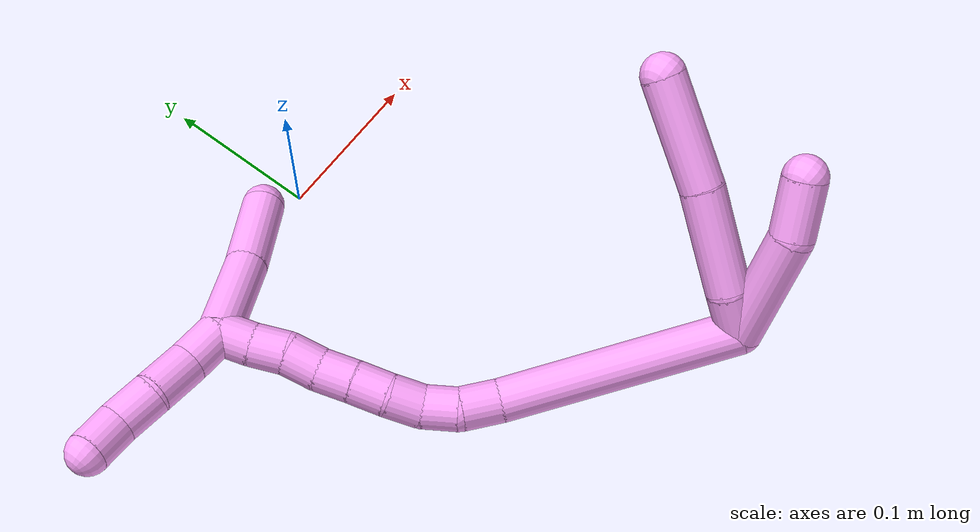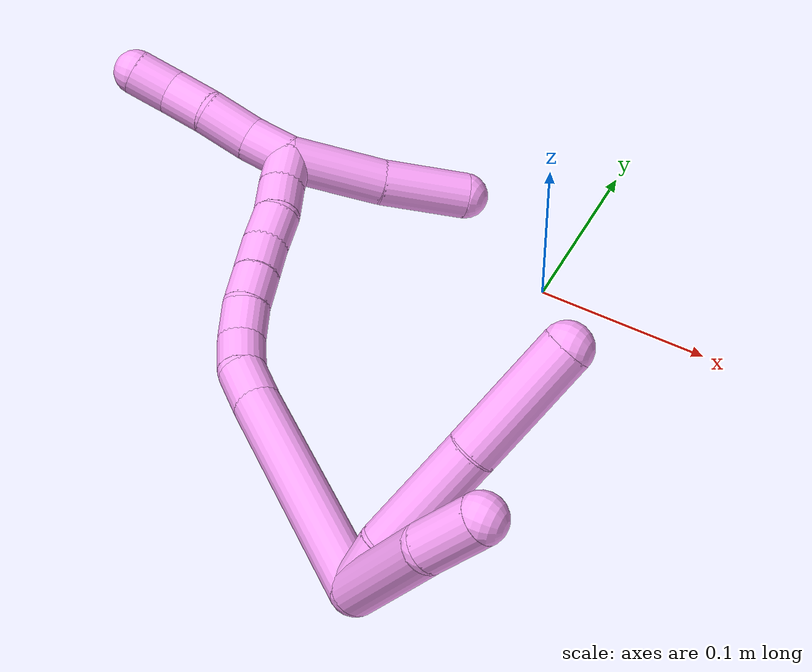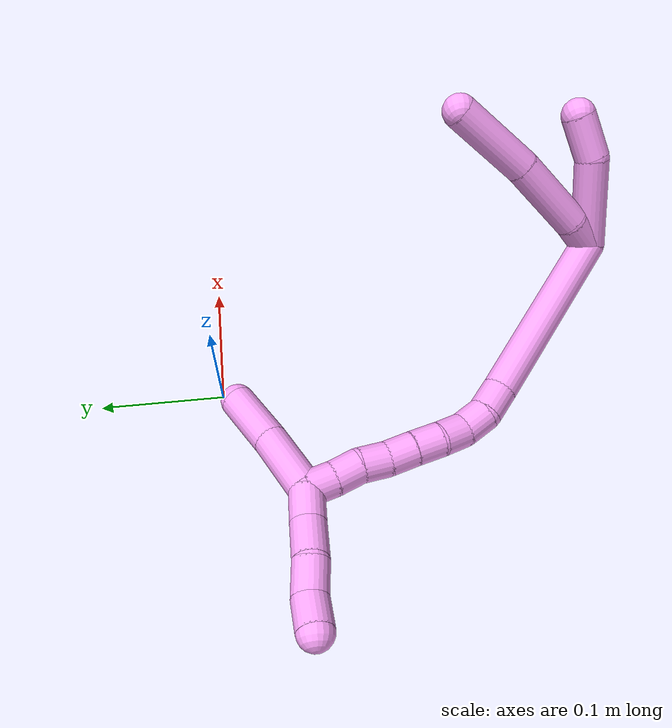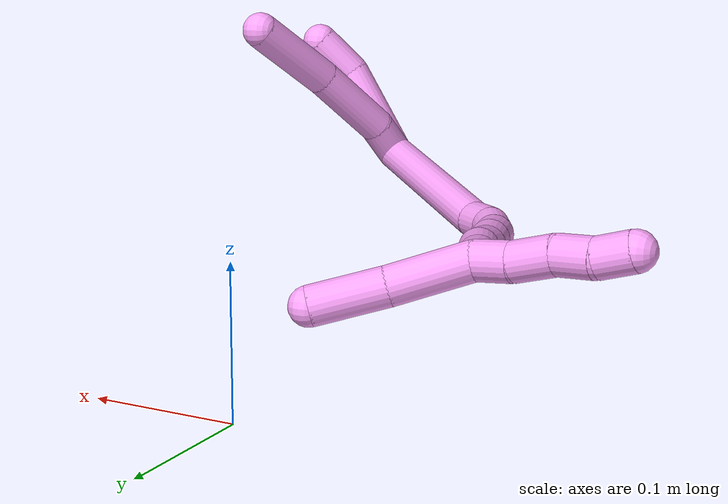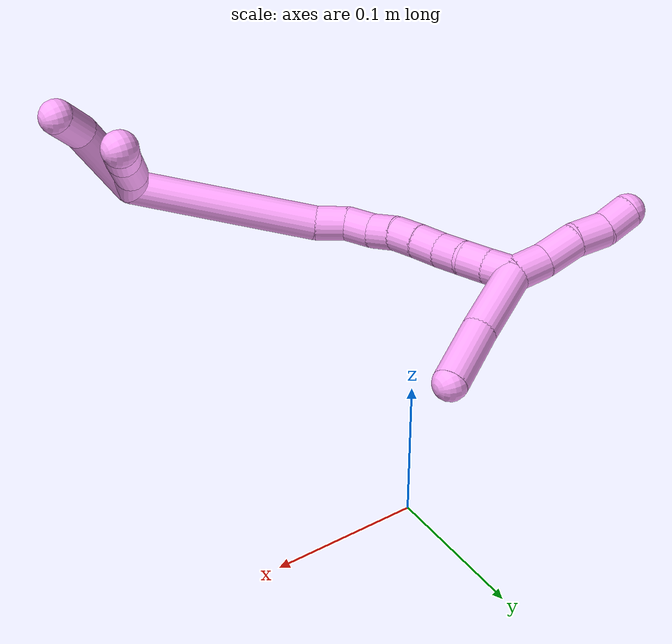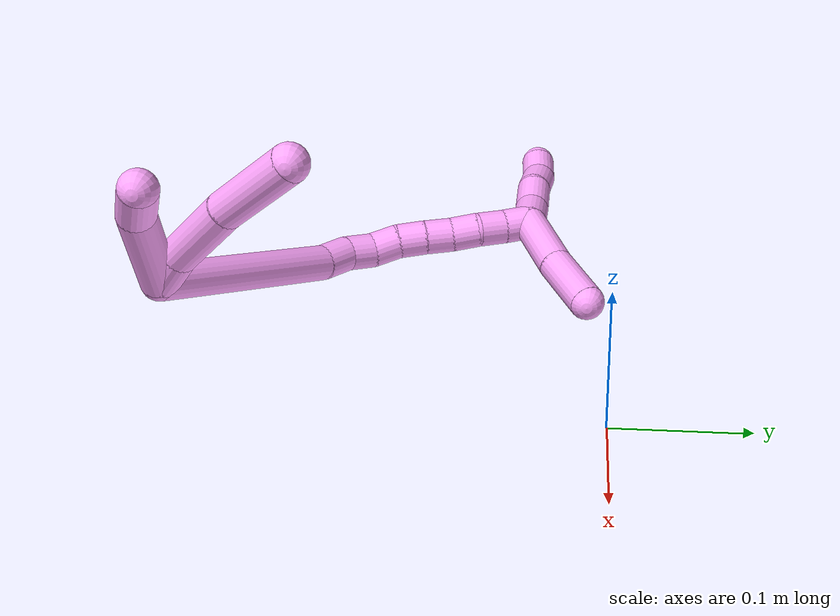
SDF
<sdf version="1.7">
 <world name="default">
  <model name="4">
   <static>0</static>
   <link name="4">
    <collision name="collision-cylinder-e_1_2_8">
     <pose>0.002757 0.012958 -0.003408 -1.82794 0.202902 -0.262544</pose>
     <geometry><cylinder><radius>0.0125</radius><length>0.027358</length></cylinder></geometry>
     <surface>
      <friction><ode><mu>1.16</mu><mu2>1.16</mu2><slip1>0</slip1><slip2>0</slip2></ode></friction>
      <contact><ode><kp>1e+06</kp><kd>1</kd><max_vel>0</max_vel><min_depth>0.001</min_depth></ode></contact>
     </surface>
    </collision>
    <visual name="visual-cylinder-e_1_2_8">
     <pose>0.002757 0.012958 -0.003408 -1.82794 0.202902 -0.262544</pose>
     <geometry><cylinder><radius>0.0125</radius><length>0.027358</length></cylinder></geometry>
     <material><ambient>1 0.65098 0.996078 1</ambient></material>
    </visual>
    <collision name="collision-cylinder-e_2_8_9">
     <pose>0.007382 0.053306 -0.018221 -1.96539 0.062892 -0.094279</pose>
     <geometry><cylinder><radius>0.0125</radius><length>0.059459</length></cylinder></geometry>
     <surface>
      <friction><ode><mu>1.16</mu><mu2>1.16</mu2><slip1>0</slip1><slip2>0</slip2></ode></friction>
      <contact><ode><kp>1e+06</kp><kd>1</kd><max_vel>0</max_vel><min_depth>0.001</min_depth></ode></contact>
     </surface>
    </collision>
    <visual name="visual-cylinder-e_2_8_9">
     <pose>0.007382 0.053306 -0.018221 -1.96539 0.062892 -0.094279</pose>
     <geometry><cylinder><radius>0.0125</radius><length>0.059459</length></cylinder></geometry>
     <material><ambient>1 0.65098 0.996078 1</ambient></material>
    </visual>
    <collision name="collision-cylinder-e_3_9_6">
     <pose>0.008196 0.110157 -0.040988 -1.93883 -0.033374 0.048634</pose>
     <geometry><cylinder><radius>0.0125</radius><length>0.063183</length></cylinder></geometry>
     <surface>
      <friction><ode><mu>1.16</mu><mu2>1.16</mu2><slip1>0</slip1><slip2>0</slip2></ode></friction>
      <contact><ode><kp>1e+06</kp><kd>1</kd><max_vel>0</max_vel><min_depth>0.001</min_depth></ode></contact>
     </surface>
    </collision>
    <visual name="visual-cylinder-e_3_9_6">
     <pose>0.008196 0.110157 -0.040988 -1.93883 -0.033374 0.048634</pose>
     <geometry><cylinder><radius>0.0125</radius><length>0.063183</length></cylinder></geometry>
     <material><ambient>1 0.65098 0.996078 1</ambient></material>
    </visual>
    <collision name="collision-cylinder-e_1_2_10">
     <pose>0.021157 0.019595 -0.017337 -2.29512 0.679986 -1.33138</pose>
     <geometry><cylinder><radius>0.0125</radius><length>0.067295</length></cylinder></geometry>
     <surface>
      <friction><ode><mu>1.16</mu><mu2>1.16</mu2><slip1>0</slip1><slip2>0</slip2></ode></friction>
      <contact><ode><kp>1e+06</kp><kd>1</kd><max_vel>0</max_vel><min_depth>0.001</min_depth></ode></contact>
     </surface>
    </collision>
    <visual name="visual-cylinder-e_1_2_10">
     <pose>0.021157 0.019595 -0.017337 -2.29512 0.679986 -1.33138</pose>
     <geometry><cylinder><radius>0.0125</radius><length>0.067295</length></cylinder></geometry>
     <material><ambient>1 0.65098 0.996078 1</ambient></material>
    </visual>
    <collision name="collision-cylinder-e_2_10_5">
     <pose>0.0477 0.050681 -0.044987 -2.30226 0.335661 -0.72582</pose>
     <geometry><cylinder><radius>0.0125</radius><length>0.032705</length></cylinder></geometry>
     <surface>
      <friction><ode><mu>1.16</mu><mu2>1.16</mu2><slip1>0</slip1><slip2>0</slip2></ode></friction>
      <contact><ode><kp>1e+06</kp><kd>1</kd><max_vel>0</max_vel><min_depth>0.001</min_depth></ode></contact>
     </surface>
    </collision>
    <visual name="visual-cylinder-e_2_10_5">
     <pose>0.0477 0.050681 -0.044987 -2.30226 0.335661 -0.72582</pose>
     <geometry><cylinder><radius>0.0125</radius><length>0.032705</length></cylinder></geometry>
     <material><ambient>1 0.65098 0.996078 1</ambient></material>
    </visual>
    <collision name="collision-cylinder-e_1_2_11">
     <pose>-0.037419 0.023869 0.051687 -0.432627 -0.581451 0.131312</pose>
     <geometry><cylinder><radius>0.0125</radius><length>0.136256</length></cylinder></geometry>
     <surface>
      <friction><ode><mu>1.16</mu><mu2>1.16</mu2><slip1>0</slip1><slip2>0</slip2></ode></friction>
      <contact><ode><kp>1e+06</kp><kd>1</kd><max_vel>0</max_vel><min_depth>0.001</min_depth></ode></contact>
     </surface>
    </collision>
    <visual name="visual-cylinder-e_1_2_11">
     <pose>-0.037419 0.023869 0.051687 -0.432627 -0.581451 0.131312</pose>
     <geometry><cylinder><radius>0.0125</radius><length>0.136256</length></cylinder></geometry>
     <material><ambient>1 0.65098 0.996078 1</ambient></material>
    </visual>
    <collision name="collision-cylinder-e_2_11_12">
     <pose>-0.079351 0.053361 0.112232 -0.565575 -0.406344 0.119583</pose>
     <geometry><cylinder><radius>0.0125</radius><length>0.022842</length></cylinder></geometry>
     <surface>
      <friction><ode><mu>1.16</mu><mu2>1.16</mu2><slip1>0</slip1><slip2>0</slip2></ode></friction>
      <contact><ode><kp>1e+06</kp><kd>1</kd><max_vel>0</max_vel><min_depth>0.001</min_depth></ode></contact>
     </surface>
    </collision>
    <visual name="visual-cylinder-e_2_11_12">
     <pose>-0.079351 0.053361 0.112232 -0.565575 -0.406344 0.119583</pose>
     <geometry><cylinder><radius>0.0125</radius><length>0.022842</length></cylinder></geometry>
     <material><ambient>1 0.65098 0.996078 1</ambient></material>
    </visual>
    <collision name="collision-cylinder-e_3_12_13">
     <pose>-0.090023 0.065136 0.126422 -0.856618 -0.647445 0.304022</pose>
     <geometry><cylinder><radius>0.0125</radius><length>0.020418</length></cylinder></geometry>
     <surface>
      <friction><ode><mu>1.16</mu><mu2>1.16</mu2><slip1>0</slip1><slip2>0</slip2></ode></friction>
      <contact><ode><kp>1e+06</kp><kd>1</kd><max_vel>0</max_vel><min_depth>0.001</min_depth></ode></contact>
     </surface>
    </collision>
    <visual name="visual-cylinder-e_3_12_13">
     <pose>-0.090023 0.065136 0.126422 -0.856618 -0.647445 0.304022</pose>
     <geometry><cylinder><radius>0.0125</radius><length>0.020418</length></cylinder></geometry>
     <material><ambient>1 0.65098 0.996078 1</ambient></material>
    </visual>
    <collision name="collision-cylinder-e_4_13_14">
     <pose>-0.10039 0.079625 0.135532 -1.14546 -0.431121 0.280532</pose>
     <geometry><cylinder><radius>0.0125</radius><length>0.020146</length></cylinder></geometry>
     <surface>
      <friction><ode><mu>1.16</mu><mu2>1.16</mu2><slip1>0</slip1><slip2>0</slip2></ode></friction>
      <contact><ode><kp>1e+06</kp><kd>1</kd><max_vel>0</max_vel><min_depth>0.001</min_depth></ode></contact>
     </surface>
    </collision>
    <visual name="visual-cylinder-e_4_13_14">
     <pose>-0.10039 0.079625 0.135532 -1.14546 -0.431121 0.280532</pose>
     <geometry><cylinder><radius>0.0125</radius><length>0.020146</length></cylinder></geometry>
     <material><ambient>1 0.65098 0.996078 1</ambient></material>
    </visual>
    <collision name="collision-cylinder-e_5_14_15">
     <pose>-0.110408 0.09571 0.14213 -1.22157 -0.613667 0.436561</pose>
     <geometry><cylinder><radius>0.0125</radius><length>0.020175</length></cylinder></geometry>
     <surface>
      <friction><ode><mu>1.16</mu><mu2>1.16</mu2><slip1>0</slip1><slip2>0</slip2></ode></friction>
      <contact><ode><kp>1e+06</kp><kd>1</kd><max_vel>0</max_vel><min_depth>0.001</min_depth></ode></contact>
     </surface>
    </collision>
    <visual name="visual-cylinder-e_5_14_15">
     <pose>-0.110408 0.09571 0.14213 -1.22157 -0.613667 0.436561</pose>
     <geometry><cylinder><radius>0.0125</radius><length>0.020175</length></cylinder></geometry>
     <material><ambient>1 0.65098 0.996078 1</ambient></material>
    </visual>
    <collision name="collision-cylinder-e_6_15_16">
     <pose>-0.12238 0.110849 0.147905 -1.19066 -0.658948 0.455166</pose>
     <geometry><cylinder><radius>0.0125</radius><length>0.020131</length></cylinder></geometry>
     <surface>
      <friction><ode><mu>1.16</mu><mu2>1.16</mu2><slip1>0</slip1><slip2>0</slip2></ode></friction>
      <contact><ode><kp>1e+06</kp><kd>1</kd><max_vel>0</max_vel><min_depth>0.001</min_depth></ode></contact>
     </surface>
    </collision>
    <visual name="visual-cylinder-e_6_15_16">
     <pose>-0.12238 0.110849 0.147905 -1.19066 -0.658948 0.455166</pose>
     <geometry><cylinder><radius>0.0125</radius><length>0.020131</length></cylinder></geometry>
     <material><ambient>1 0.65098 0.996078 1</ambient></material>
    </visual>
    <collision name="collision-cylinder-e_7_16_17">
     <pose>-0.133823 0.126506 0.152877 -1.33121 -0.555336 0.440316</pose>
     <geometry><cylinder><radius>0.0125</radius><length>0.02003</length></cylinder></geometry>
     <surface>
      <friction><ode><mu>1.16</mu><mu2>1.16</mu2><slip1>0</slip1><slip2>0</slip2></ode></friction>
      <contact><ode><kp>1e+06</kp><kd>1</kd><max_vel>0</max_vel><min_depth>0.001</min_depth></ode></contact>
     </surface>
    </collision>
    <visual name="visual-cylinder-e_7_16_17">
     <pose>-0.133823 0.126506 0.152877 -1.33121 -0.555336 0.440316</pose>
     <geometry><cylinder><radius>0.0125</radius><length>0.02003</length></cylinder></geometry>
     <material><ambient>1 0.65098 0.996078 1</ambient></material>
    </visual>
    <collision name="collision-cylinder-e_8_17_18">
     <pose>-0.145128 0.141766 0.158745 -1.06762 -0.646541 0.39097</pose>
     <geometry><cylinder><radius>0.0125</radius><length>0.020001</length></cylinder></geometry>
     <surface>
      <friction><ode><mu>1.16</mu><mu2>1.16</mu2><slip1>0</slip1><slip2>0</slip2></ode></friction>
      <contact><ode><kp>1e+06</kp><kd>1</kd><max_vel>0</max_vel><min_depth>0.001</min_depth></ode></contact>
     </surface>
    </collision>
    <visual name="visual-cylinder-e_8_17_18">
     <pose>-0.145128 0.141766 0.158745 -1.06762 -0.646541 0.39097</pose>
     <geometry><cylinder><radius>0.0125</radius><length>0.020001</length></cylinder></geometry>
     <material><ambient>1 0.65098 0.996078 1</ambient></material>
    </visual>
    <collision name="collision-cylinder-e_9_18_1">
     <pose>-0.156734 0.156441 0.16573 -1.18327 -0.59211 0.404304</pose>
     <geometry><cylinder><radius>0.0125</radius><length>0.020001</length></cylinder></geometry>
     <surface>
      <friction><ode><mu>1.16</mu><mu2>1.16</mu2><slip1>0</slip1><slip2>0</slip2></ode></friction>
      <contact><ode><kp>1e+06</kp><kd>1</kd><max_vel>0</max_vel><min_depth>0.001</min_depth></ode></contact>
     </surface>
    </collision>
    <visual name="visual-cylinder-e_9_18_1">
     <pose>-0.156734 0.156441 0.16573 -1.18327 -0.59211 0.404304</pose>
     <geometry><cylinder><radius>0.0125</radius><length>0.020001</length></cylinder></geometry>
     <material><ambient>1 0.65098 0.996078 1</ambient></material>
    </visual>
    <collision name="collision-cylinder-e_1_1_19">
     <pose>-0.175215 0.166978 0.14613 -3.0167 -0.512733 2.67329</pose>
     <geometry><cylinder><radius>0.0125</radius><length>0.052592</length></cylinder></geometry>
     <surface>
      <friction><ode><mu>1.16</mu><mu2>1.16</mu2><slip1>0</slip1><slip2>0</slip2></ode></friction>
      <contact><ode><kp>1e+06</kp><kd>1</kd><max_vel>0</max_vel><min_depth>0.001</min_depth></ode></contact>
     </surface>
    </collision>
    <visual name="visual-cylinder-e_1_1_19">
     <pose>-0.175215 0.166978 0.14613 -3.0167 -0.512733 2.67329</pose>
     <geometry><cylinder><radius>0.0125</radius><length>0.052592</length></cylinder></geometry>
     <material><ambient>1 0.65098 0.996078 1</ambient></material>
    </visual>
    <collision name="collision-cylinder-e_2_19_4">
     <pose>-0.1997 0.174466 0.103239 -2.91565 -0.510634 2.32152</pose>
     <geometry><cylinder><radius>0.0125</radius><length>0.047408</length></cylinder></geometry>
     <surface>
      <friction><ode><mu>1.16</mu><mu2>1.16</mu2><slip1>0</slip1><slip2>0</slip2></ode></friction>
      <contact><ode><kp>1e+06</kp><kd>1</kd><max_vel>0</max_vel><min_depth>0.001</min_depth></ode></contact>
     </surface>
    </collision>
    <visual name="visual-cylinder-e_2_19_4">
     <pose>-0.1997 0.174466 0.103239 -2.91565 -0.510634 2.32152</pose>
     <geometry><cylinder><radius>0.0125</radius><length>0.047408</length></cylinder></geometry>
     <material><ambient>1 0.65098 0.996078 1</ambient></material>
    </visual>
    <collision name="collision-cylinder-e_1_1_20">
     <pose>-0.161969 0.165204 0.181055 -0.088385 0.02829 -0.001251</pose>
     <geometry><cylinder><radius>0.0125</radius><length>0.024483</length></cylinder></geometry>
     <surface>
      <friction><ode><mu>1.16</mu><mu2>1.16</mu2><slip1>0</slip1><slip2>0</slip2></ode></friction>
      <contact><ode><kp>1e+06</kp><kd>1</kd><max_vel>0</max_vel><min_depth>0.001</min_depth></ode></contact>
     </surface>
    </collision>
    <visual name="visual-cylinder-e_1_1_20">
     <pose>-0.161969 0.165204 0.181055 -0.088385 0.02829 -0.001251</pose>
     <geometry><cylinder><radius>0.0125</radius><length>0.024483</length></cylinder></geometry>
     <material><ambient>1 0.65098 0.996078 1</ambient></material>
    </visual>
    <collision name="collision-cylinder-e_2_20_21">
     <pose>-0.159151 0.168869 0.206727 -0.189434 0.178139 -0.016968</pose>
     <geometry><cylinder><radius>0.0125</radius><length>0.027898</length></cylinder></geometry>
     <surface>
      <friction><ode><mu>1.16</mu><mu2>1.16</mu2><slip1>0</slip1><slip2>0</slip2></ode></friction>
      <contact><ode><kp>1e+06</kp><kd>1</kd><max_vel>0</max_vel><min_depth>0.001</min_depth></ode></contact>
     </surface>
    </collision>
    <visual name="visual-cylinder-e_2_20_21">
     <pose>-0.159151 0.168869 0.206727 -0.189434 0.178139 -0.016968</pose>
     <geometry><cylinder><radius>0.0125</radius><length>0.027898</length></cylinder></geometry>
     <material><ambient>1 0.65098 0.996078 1</ambient></material>
    </visual>
    <collision name="collision-cylinder-e_3_21_22">
     <pose>-0.157179 0.172924 0.23233 -0.12067 -0.040845 0.002468</pose>
     <geometry><cylinder><radius>0.0125</radius><length>0.02444</length></cylinder></geometry>
     <surface>
      <friction><ode><mu>1.16</mu><mu2>1.16</mu2><slip1>0</slip1><slip2>0</slip2></ode></friction>
      <contact><ode><kp>1e+06</kp><kd>1</kd><max_vel>0</max_vel><min_depth>0.001</min_depth></ode></contact>
     </surface>
    </collision>
    <visual name="visual-cylinder-e_3_21_22">
     <pose>-0.157179 0.172924 0.23233 -0.12067 -0.040845 0.002468</pose>
     <geometry><cylinder><radius>0.0125</radius><length>0.02444</length></cylinder></geometry>
     <material><ambient>1 0.65098 0.996078 1</ambient></material>
    </visual>
    <collision name="collision-cylinder-e_4_22_3">
     <pose>-0.154955 0.175918 0.255613 -0.135729 0.237121 -0.016192</pose>
     <geometry><cylinder><radius>0.0125</radius><length>0.023179</length></cylinder></geometry>
     <surface>
      <friction><ode><mu>1.16</mu><mu2>1.16</mu2><slip1>0</slip1><slip2>0</slip2></ode></friction>
      <contact><ode><kp>1e+06</kp><kd>1</kd><max_vel>0</max_vel><min_depth>0.001</min_depth></ode></contact>
     </surface>
    </collision>
    <visual name="visual-cylinder-e_4_22_3">
     <pose>-0.154955 0.175918 0.255613 -0.135729 0.237121 -0.016192</pose>
     <geometry><cylinder><radius>0.0125</radius><length>0.023179</length></cylinder></geometry>
     <material><ambient>1 0.65098 0.996078 1</ambient></material>
    </visual>
    <collision name="collision-sphere-3">
     <pose>-0.152233 0.177443 0.266774 0 -0 0</pose>
     <geometry><sphere><radius>0.0125</radius></sphere></geometry>
     <surface>
      <friction><ode><mu>1.16</mu><mu2>1.16</mu2><slip1>0</slip1><slip2>0</slip2></ode></friction>
      <contact><ode><kp>1e+06</kp><kd>1</kd><max_vel>0</max_vel><min_depth>0.001</min_depth></ode></contact>
     </surface>
    </collision>
    <visual name="visual-sphere-3">
     <pose>-0.152233 0.177443 0.266774 0 -0 0</pose>
     <geometry><sphere><radius>0.0125</radius></sphere></geometry>
     <material><ambient>1 0.65098 0.996078 1</ambient></material>
    </visual>
    <collision name="collision-sphere-22">
     <pose>-0.157678 0.174394 0.244451 0 -0 0</pose>
     <geometry><sphere><radius>0.0125</radius></sphere></geometry>
     <surface>
      <friction><ode><mu>1.16</mu><mu2>1.16</mu2><slip1>0</slip1><slip2>0</slip2></ode></friction>
      <contact><ode><kp>1e+06</kp><kd>1</kd><max_vel>0</max_vel><min_depth>0.001</min_depth></ode></contact>
     </surface>
    </collision>
    <visual name="visual-sphere-22">
     <pose>-0.157678 0.174394 0.244451 0 -0 0</pose>
     <geometry><sphere><radius>0.0125</radius></sphere></geometry>
     <material><ambient>1 0.65098 0.996078 1</ambient></material>
    </visual>
    <collision name="collision-sphere-21">
     <pose>-0.15668 0.171454 0.220209 0 -0 0</pose>
     <geometry><sphere><radius>0.0125</radius></sphere></geometry>
     <surface>
      <friction><ode><mu>1.16</mu><mu2>1.16</mu2><slip1>0</slip1><slip2>0</slip2></ode></friction>
      <contact><ode><kp>1e+06</kp><kd>1</kd><max_vel>0</max_vel><min_depth>0.001</min_depth></ode></contact>
     </surface>
    </collision>
    <visual name="visual-sphere-21">
     <pose>-0.15668 0.171454 0.220209 0 -0 0</pose>
     <geometry><sphere><radius>0.0125</radius></sphere></geometry>
     <material><ambient>1 0.65098 0.996078 1</ambient></material>
    </visual>
    <collision name="collision-sphere-20">
     <pose>-0.161623 0.166284 0.193244 0 -0 0</pose>
     <geometry><sphere><radius>0.0125</radius></sphere></geometry>
     <surface>
      <friction><ode><mu>1.16</mu><mu2>1.16</mu2><slip1>0</slip1><slip2>0</slip2></ode></friction>
      <contact><ode><kp>1e+06</kp><kd>1</kd><max_vel>0</max_vel><min_depth>0.001</min_depth></ode></contact>
     </surface>
    </collision>
    <visual name="visual-sphere-20">
     <pose>-0.161623 0.166284 0.193244 0 -0 0</pose>
     <geometry><sphere><radius>0.0125</radius></sphere></geometry>
     <material><ambient>1 0.65098 0.996078 1</ambient></material>
    </visual>
    <collision name="collision-sphere-4">
     <pose>-0.211285 0.179099 0.083085 0 -0 0</pose>
     <geometry><sphere><radius>0.0125</radius></sphere></geometry>
     <surface>
      <friction><ode><mu>1.16</mu><mu2>1.16</mu2><slip1>0</slip1><slip2>0</slip2></ode></friction>
      <contact><ode><kp>1e+06</kp><kd>1</kd><max_vel>0</max_vel><min_depth>0.001</min_depth></ode></contact>
     </surface>
    </collision>
    <visual name="visual-sphere-4">
     <pose>-0.211285 0.179099 0.083085 0 -0 0</pose>
     <geometry><sphere><radius>0.0125</radius></sphere></geometry>
     <material><ambient>1 0.65098 0.996078 1</ambient></material>
    </visual>
    <collision name="collision-sphere-5">
     <pose>0.053087 0.062171 -0.0553 0 -0 0</pose>
     <geometry><sphere><radius>0.0125</radius></sphere></geometry>
     <surface>
      <friction><ode><mu>1.16</mu><mu2>1.16</mu2><slip1>0</slip1><slip2>0</slip2></ode></friction>
      <contact><ode><kp>1e+06</kp><kd>1</kd><max_vel>0</max_vel><min_depth>0.001</min_depth></ode></contact>
     </surface>
    </collision>
    <visual name="visual-sphere-5">
     <pose>0.053087 0.062171 -0.0553 0 -0 0</pose>
     <geometry><sphere><radius>0.0125</radius></sphere></geometry>
     <material><ambient>1 0.65098 0.996078 1</ambient></material>
    </visual>
    <collision name="collision-sphere-10">
     <pose>0.042314 0.039191 -0.034674 0 -0 0</pose>
     <geometry><sphere><radius>0.0125</radius></sphere></geometry>
     <surface>
      <friction><ode><mu>1.16</mu><mu2>1.16</mu2><slip1>0</slip1><slip2>0</slip2></ode></friction>
      <contact><ode><kp>1e+06</kp><kd>1</kd><max_vel>0</max_vel><min_depth>0.001</min_depth></ode></contact>
     </surface>
    </collision>
    <visual name="visual-sphere-10">
     <pose>0.042314 0.039191 -0.034674 0 -0 0</pose>
     <geometry><sphere><radius>0.0125</radius></sphere></geometry>
     <material><ambient>1 0.65098 0.996078 1</ambient></material>
    </visual>
    <collision name="collision-sphere-6">
     <pose>0.007142 0.139616 -0.052347 0 -0 0</pose>
     <geometry><sphere><radius>0.0125</radius></sphere></geometry>
     <surface>
      <friction><ode><mu>1.16</mu><mu2>1.16</mu2><slip1>0</slip1><slip2>0</slip2></ode></friction>
      <contact><ode><kp>1e+06</kp><kd>1</kd><max_vel>0</max_vel><min_depth>0.001</min_depth></ode></contact>
     </surface>
    </collision>
    <visual name="visual-sphere-6">
     <pose>0.007142 0.139616 -0.052347 0 -0 0</pose>
     <geometry><sphere><radius>0.0125</radius></sphere></geometry>
     <material><ambient>1 0.65098 0.996078 1</ambient></material>
    </visual>
    <collision name="collision-sphere-9">
     <pose>0.00925 0.080697 -0.029628 0 -0 0</pose>
     <geometry><sphere><radius>0.0125</radius></sphere></geometry>
     <surface>
      <friction><ode><mu>1.16</mu><mu2>1.16</mu2><slip1>0</slip1><slip2>0</slip2></ode></friction>
      <contact><ode><kp>1e+06</kp><kd>1</kd><max_vel>0</max_vel><min_depth>0.001</min_depth></ode></contact>
     </surface>
    </collision>
    <visual name="visual-sphere-9">
     <pose>0.00925 0.080697 -0.029628 0 -0 0</pose>
     <geometry><sphere><radius>0.0125</radius></sphere></geometry>
     <material><ambient>1 0.65098 0.996078 1</ambient></material>
    </visual>
    <collision name="collision-sphere-2">
     <geometry><sphere><radius>0.0125</radius></sphere></geometry>
     <surface>
      <friction><ode><mu>1.16</mu><mu2>1.16</mu2><slip1>0</slip1><slip2>0</slip2></ode></friction>
      <contact><ode><kp>1e+06</kp><kd>1</kd><max_vel>0</max_vel><min_depth>0.001</min_depth></ode></contact>
     </surface>
    </collision>
    <visual name="visual-sphere-2">
     <geometry><sphere><radius>0.0125</radius></sphere></geometry>
     <material><ambient>1 0.65098 0.996078 1</ambient></material>
    </visual>
    <collision name="collision-sphere-19">
     <pose>-0.188115 0.169833 0.123394 0 -0 0</pose>
     <geometry><sphere><radius>0.0125</radius></sphere></geometry>
     <surface>
      <friction><ode><mu>1.16</mu><mu2>1.16</mu2><slip1>0</slip1><slip2>0</slip2></ode></friction>
      <contact><ode><kp>1e+06</kp><kd>1</kd><max_vel>0</max_vel><min_depth>0.001</min_depth></ode></contact>
     </surface>
    </collision>
    <visual name="visual-sphere-19">
     <pose>-0.188115 0.169833 0.123394 0 -0 0</pose>
     <geometry><sphere><radius>0.0125</radius></sphere></geometry>
     <material><ambient>1 0.65098 0.996078 1</ambient></material>
    </visual>
    <collision name="collision-sphere-8">
     <pose>0.005513 0.025916 -0.006815 0 -0 0</pose>
     <geometry><sphere><radius>0.0125</radius></sphere></geometry>
     <surface>
      <friction><ode><mu>1.16</mu><mu2>1.16</mu2><slip1>0</slip1><slip2>0</slip2></ode></friction>
      <contact><ode><kp>1e+06</kp><kd>1</kd><max_vel>0</max_vel><min_depth>0.001</min_depth></ode></contact>
     </surface>
    </collision>
    <visual name="visual-sphere-8">
     <pose>0.005513 0.025916 -0.006815 0 -0 0</pose>
     <geometry><sphere><radius>0.0125</radius></sphere></geometry>
     <material><ambient>1 0.65098 0.996078 1</ambient></material>
    </visual>
    <collision name="collision-sphere-11">
     <pose>-0.074837 0.047739 0.103374 0 -0 0</pose>
     <geometry><sphere><radius>0.0125</radius></sphere></geometry>
     <surface>
      <friction><ode><mu>1.16</mu><mu2>1.16</mu2><slip1>0</slip1><slip2>0</slip2></ode></friction>
      <contact><ode><kp>1e+06</kp><kd>1</kd><max_vel>0</max_vel><min_depth>0.001</min_depth></ode></contact>
     </surface>
    </collision>
    <visual name="visual-sphere-11">
     <pose>-0.074837 0.047739 0.103374 0 -0 0</pose>
     <geometry><sphere><radius>0.0125</radius></sphere></geometry>
     <material><ambient>1 0.65098 0.996078 1</ambient></material>
    </visual>
    <collision name="collision-sphere-12">
     <pose>-0.083865 0.058983 0.121089 0 -0 0</pose>
     <geometry><sphere><radius>0.0125</radius></sphere></geometry>
     <surface>
      <friction><ode><mu>1.16</mu><mu2>1.16</mu2><slip1>0</slip1><slip2>0</slip2></ode></friction>
      <contact><ode><kp>1e+06</kp><kd>1</kd><max_vel>0</max_vel><min_depth>0.001</min_depth></ode></contact>
     </surface>
    </collision>
    <visual name="visual-sphere-12">
     <pose>-0.083865 0.058983 0.121089 0 -0 0</pose>
     <geometry><sphere><radius>0.0125</radius></sphere></geometry>
     <material><ambient>1 0.65098 0.996078 1</ambient></material>
    </visual>
    <collision name="collision-sphere-13">
     <pose>-0.09618 0.071289 0.131756 0 -0 0</pose>
     <geometry><sphere><radius>0.0125</radius></sphere></geometry>
     <surface>
      <friction><ode><mu>1.16</mu><mu2>1.16</mu2><slip1>0</slip1><slip2>0</slip2></ode></friction>
      <contact><ode><kp>1e+06</kp><kd>1</kd><max_vel>0</max_vel><min_depth>0.001</min_depth></ode></contact>
     </surface>
    </collision>
    <visual name="visual-sphere-13">
     <pose>-0.09618 0.071289 0.131756 0 -0 0</pose>
     <geometry><sphere><radius>0.0125</radius></sphere></geometry>
     <material><ambient>1 0.65098 0.996078 1</ambient></material>
    </visual>
    <collision name="collision-sphere-14">
     <pose>-0.104599 0.08796 0.139308 0 -0 0</pose>
     <geometry><sphere><radius>0.0125</radius></sphere></geometry>
     <surface>
      <friction><ode><mu>1.16</mu><mu2>1.16</mu2><slip1>0</slip1><slip2>0</slip2></ode></friction>
      <contact><ode><kp>1e+06</kp><kd>1</kd><max_vel>0</max_vel><min_depth>0.001</min_depth></ode></contact>
     </surface>
    </collision>
    <visual name="visual-sphere-14">
     <pose>-0.104599 0.08796 0.139308 0 -0 0</pose>
     <geometry><sphere><radius>0.0125</radius></sphere></geometry>
     <material><ambient>1 0.65098 0.996078 1</ambient></material>
    </visual>
    <collision name="collision-sphere-15">
     <pose>-0.116217 0.103459 0.144952 0 -0 0</pose>
     <geometry><sphere><radius>0.0125</radius></sphere></geometry>
     <surface>
      <friction><ode><mu>1.16</mu><mu2>1.16</mu2><slip1>0</slip1><slip2>0</slip2></ode></friction>
      <contact><ode><kp>1e+06</kp><kd>1</kd><max_vel>0</max_vel><min_depth>0.001</min_depth></ode></contact>
     </surface>
    </collision>
    <visual name="visual-sphere-15">
     <pose>-0.116217 0.103459 0.144952 0 -0 0</pose>
     <geometry><sphere><radius>0.0125</radius></sphere></geometry>
     <material><ambient>1 0.65098 0.996078 1</ambient></material>
    </visual>
    <collision name="collision-sphere-16">
     <pose>-0.128543 0.118239 0.150857 0 -0 0</pose>
     <geometry><sphere><radius>0.0125</radius></sphere></geometry>
     <surface>
      <friction><ode><mu>1.16</mu><mu2>1.16</mu2><slip1>0</slip1><slip2>0</slip2></ode></friction>
      <contact><ode><kp>1e+06</kp><kd>1</kd><max_vel>0</max_vel><min_depth>0.001</min_depth></ode></contact>
     </surface>
    </collision>
    <visual name="visual-sphere-16">
     <pose>-0.128543 0.118239 0.150857 0 -0 0</pose>
     <geometry><sphere><radius>0.0125</radius></sphere></geometry>
     <material><ambient>1 0.65098 0.996078 1</ambient></material>
    </visual>
    <collision name="collision-sphere-17">
     <pose>-0.139104 0.134773 0.154896 0 -0 0</pose>
     <geometry><sphere><radius>0.0125</radius></sphere></geometry>
     <surface>
      <friction><ode><mu>1.16</mu><mu2>1.16</mu2><slip1>0</slip1><slip2>0</slip2></ode></friction>
      <contact><ode><kp>1e+06</kp><kd>1</kd><max_vel>0</max_vel><min_depth>0.001</min_depth></ode></contact>
     </surface>
    </collision>
    <visual name="visual-sphere-17">
     <pose>-0.139104 0.134773 0.154896 0 -0 0</pose>
     <geometry><sphere><radius>0.0125</radius></sphere></geometry>
     <material><ambient>1 0.65098 0.996078 1</ambient></material>
    </visual>
    <collision name="collision-sphere-18">
     <pose>-0.151153 0.148759 0.162595 0 -0 0</pose>
     <geometry><sphere><radius>0.0125</radius></sphere></geometry>
     <surface>
      <friction><ode><mu>1.16</mu><mu2>1.16</mu2><slip1>0</slip1><slip2>0</slip2></ode></friction>
      <contact><ode><kp>1e+06</kp><kd>1</kd><max_vel>0</max_vel><min_depth>0.001</min_depth></ode></contact>
     </surface>
    </collision>
    <visual name="visual-sphere-18">
     <pose>-0.151153 0.148759 0.162595 0 -0 0</pose>
     <geometry><sphere><radius>0.0125</radius></sphere></geometry>
     <material><ambient>1 0.65098 0.996078 1</ambient></material>
    </visual>
    <collision name="collision-sphere-1">
     <pose>-0.162316 0.164124 0.168866 0 -0 0</pose>
     <geometry><sphere><radius>0.0125</radius></sphere></geometry>
     <surface>
      <friction><ode><mu>1.16</mu><mu2>1.16</mu2><slip1>0</slip1><slip2>0</slip2></ode></friction>
      <contact><ode><kp>1e+06</kp><kd>1</kd><max_vel>0</max_vel><min_depth>0.001</min_depth></ode></contact>
     </surface>
    </collision>
    <visual name="visual-sphere-1">
     <pose>-0.162316 0.164124 0.168866 0 -0 0</pose>
     <geometry><sphere><radius>0.0125</radius></sphere></geometry>
     <material><ambient>1 0.65098 0.996078 1</ambient></material>
    </visual>
    <inertial>
     <pose>-0.072914 0.090185 0.077724 0 -0 0</pose>
     <mass>0.75</mass>
     <inertia>
      <ixx>0.000237</ixx>
      <ixy>0</ixy>
      <ixz>0</ixz>
      <iyy>0.000274</iyy>
      <iyz>0</iyz>
      <izz>-2.9e-05</izz>
     </inertia>
    </inertial>
   </link>
   <pose>0.041562 -0.289768 0.114393 1.54961 -0.849562 -1.55081</pose>
  </model>
 </world>
</sdf>
